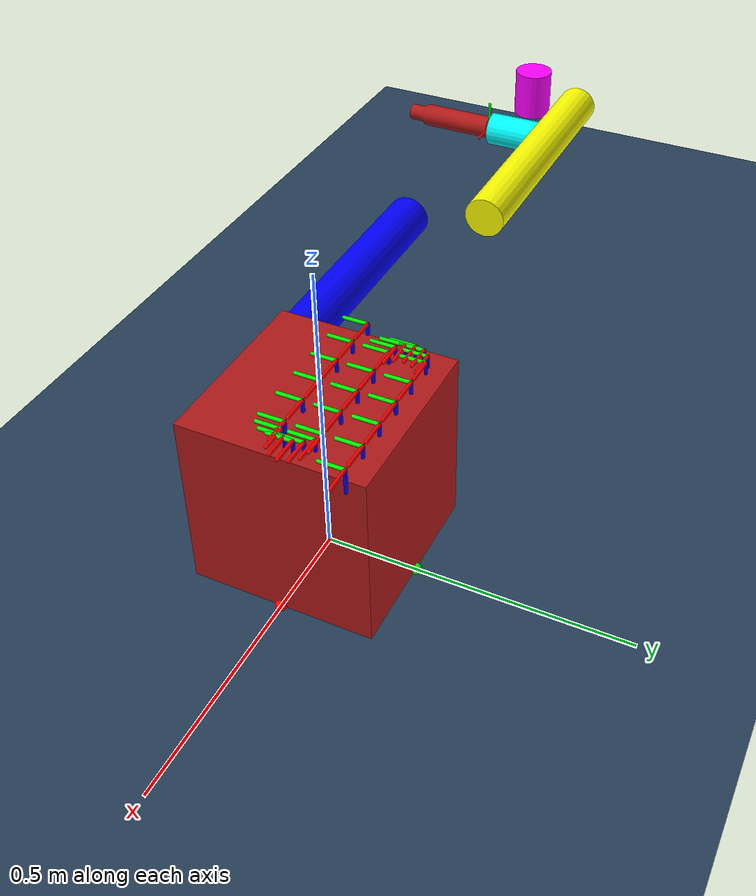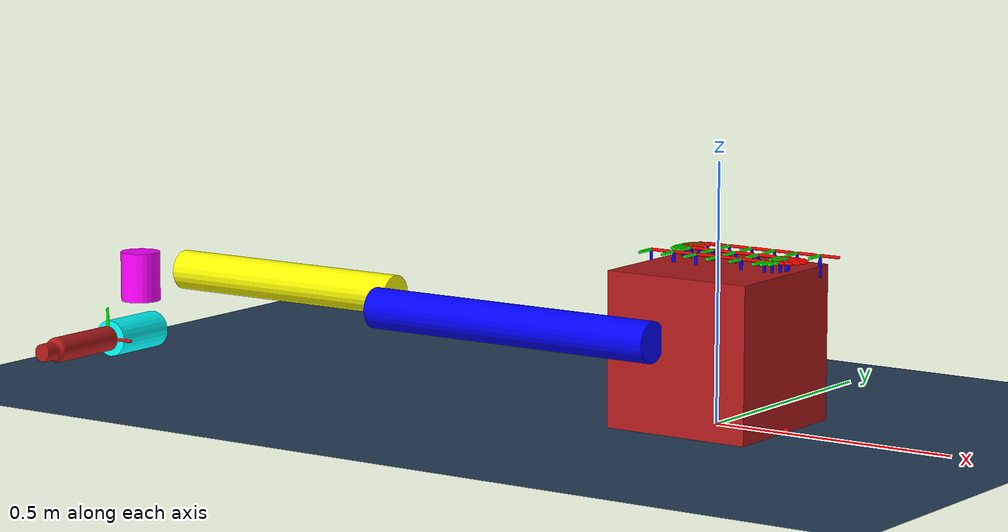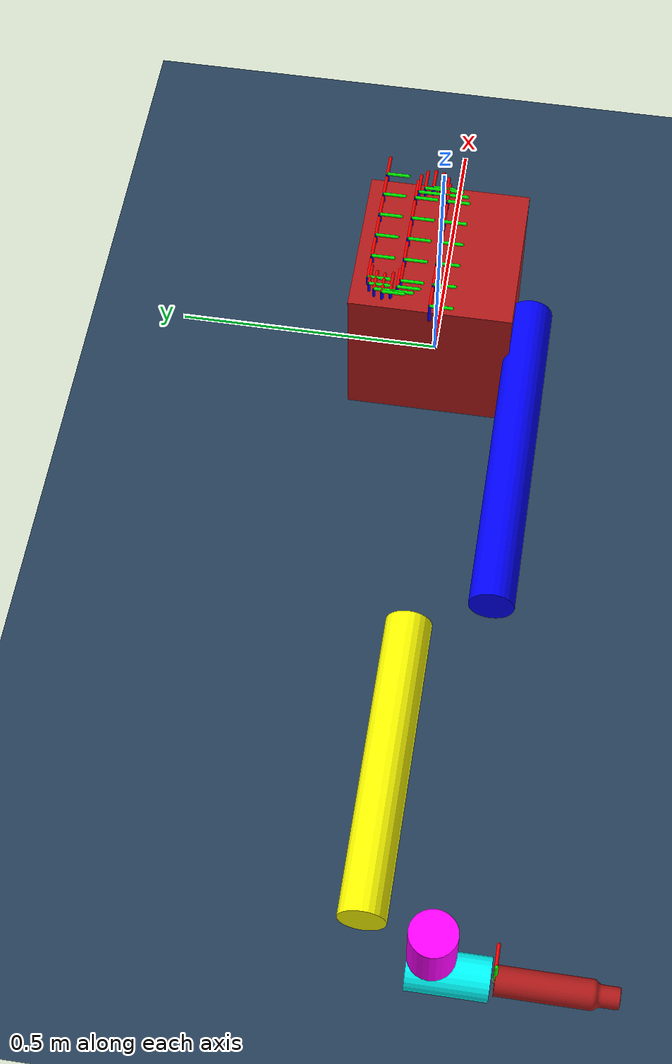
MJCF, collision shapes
<mujoco model="ur5e scene">
  <compiler autolimits="true" balanceinertia="true" meshdir="fairino/assets" angle="radian" coordinate="local"/>
  <statistic center="0.3 0 0.4" extent="0.8"/>

  <visual>
    <headlight diffuse="0.6 0.6 0.6" ambient="0.1 0.1 0.1" specular="0 0 0"/>
    <rgba haze="0.15 0.25 0.35 1"/>
    <global azimuth="120" elevation="-20"/>
  </visual>

  <asset>
    <texture type="skybox" builtin="gradient" rgb1="0.3 0.5 0.7" rgb2="0 0 0" width="512" height="3072"/>
    <texture type="2d" name="groundplane" builtin="checker" mark="edge" rgb1="0.2 0.3 0.4" rgb2="0.1 0.2 0.3" markrgb="0.8 0.8 0.8" width="300" height="300"/>
    <material name="groundplane" texture="groundplane" texuniform="true" texrepeat="5 5" reflectance="0.2"/>
  <material name="Fairino/white" class="Fairino/" rgba="0.89804 0.91765 0.92941 1"/>
    <material name="Fairino/grey" class="Fairino/" rgba="0.79216 0.81961 0.93333 1"/>
    <mesh name="Fairino/base_link" class="Fairino/" file="base_link.STL" scale="1 1 1"/>
    <mesh name="Fairino/shoulder_link" class="Fairino/" file="shoulder_link.STL" scale="1 1 1"/>
    <mesh name="Fairino/upperarm_link" class="Fairino/" file="upperarm_link.STL" scale="1 1 1"/>
    <mesh name="Fairino/forearm_link" class="Fairino/" file="forearm_link.STL" scale="1 1 1"/>
    <mesh name="Fairino/wrist1_link" class="Fairino/" file="wrist1_link.STL" scale="1 1 1"/>
    <mesh name="Fairino/wrist2_link" class="Fairino/" file="wrist2_link.STL" scale="1 1 1"/>
    <mesh name="Fairino/wrist3_link" class="Fairino/" file="wrist3_link.STL" scale="1 1 1"/>
  <mesh name="tool_mesh" file="painting_gun.obj"/>
    <mesh name="painting_gun_collision_mesh" file="painting_gun.obj"/>
  <mesh name="cube_mesh" file="cube.obj"/>
    <mesh name="cube_collision_mesh" file="cube.obj"/>
  </asset>

  <worldbody>
    <light pos="0 0 1.5" dir="0 0 -1" directional="true"/>
    <geom name="floor" size="0 0 0.05" type="plane" pos="0.0 0.0 0.0" material="groundplane"/>
    <!-- Definition of the world frame -->
    <body name="world_frame" pos="0.0 0.0 0.0">
        <geom name="world_x_axis" type="capsule" fromto="0 0 0 0.15 0 0" size="0.01" rgba="1 0 0 1" contype="0" conaffinity="0"/>
        <geom name="world_y_axis" type="capsule" fromto="0 0 0 0 0.15 0" size="0.01" rgba="0 1 0 1" contype="0" conaffinity="0"/>
        <geom name="world_z_axis" type="capsule" fromto="0 0 0 0 0 0.15" size="0.01" rgba="0 0 1 1" contype="0" conaffinity="0"/>
    </body>

    <!-- Optimization search space -->

  <light pos="0 0 1.5" dir="0 0 -1" directional="true"/>
    <body name="Fairino/Robot">

      <body name="base" pos="0 0 0">
        <inertial pos="-0.00037778 -0.00035367 0.035825" euler="0 0 0" mass="0.73775" diaginertia="0.0026263 0.0026258 0.0044466"/>
        <geom type="capsule" fromto="0 0 0 0.05 0 0" rgba="1 0 0 1" size="0.002" contype="0" conaffinity="0"/>
        <geom type="capsule" fromto="0 0 0 0 0.05 0" rgba="0 1 0 1" size="0.002" contype="0" conaffinity="0"/>
        <geom type="capsule" fromto="0 0 0 0 0 0.05" rgba="0 0 1 1" size="0.002" contype="0" conaffinity="0"/>
        <geom name="Fairino/geom_base_visual" class="Fairino/visual" material="Fairino/white" mesh="Fairino/base_link"/>
        <!-- With this -->
        <geom name="Fairino/geom_base_collision" class="Fairino/collision" type="cylinder" pos="0 0 0.13" size="0.06 0.12" rgba="1 0 0 0.4"/>

        <!-- j1: xyz="0 0 0" rpy="0 0 0" axis="0 0 1" -->
        <body name="shoulder_link" pos="0 0 0" euler="0 0 0">
          <inertial pos="3.3888e-09 -0.0079713 0.17311" euler="0 0 0" mass="9.8122" diaginertia="0.041746 0.039088 0.031895"/>
          <joint name="j1" class="Fairino/type_joint" axis="0 0 1" range="-3.0543 3.0543"/>
          <geom name="Fairino/geom_shoulder_visual" class="Fairino/visual" material="Fairino/white" mesh="Fairino/shoulder_link"/>

          <!-- j2: xyz="0 0 0.18" rpy="1.5708 0 0" axis="0 0 1" -->
          <body name="upperarm_link" pos="0 0 0.18" euler="1.5708 0 0">
            <inertial pos="-0.28687 -1.3562e-08 0.18211" euler="0 0 0" mass="29.757" diaginertia="0.0783 2.0297 2.0144"/>
            <joint name="j2" axis="0 0 1" range="-4.6251 1.4835"/>
            <geom name="Fairino/geom_upperarm_visual" class="Fairino/visual" material="Fairino/white" mesh="Fairino/upperarm_link"/>
            <geom name="Fairino/geom_upperarm_collision" class="Fairino/collision" type="cylinder" pos="-0.35 0 0.18" euler="0 1.5708 0" size="0.04 0.32" rgba="0 0 1 0.4"/>

            <!-- j3: xyz="-0.7 0 0" rpy="0 0 0" axis="0 0 1" -->
            <body name="forearm_link" pos="-0.7 0 0" euler="0 0 0">
              <inertial pos="-0.29317 8.0463e-07 0.049055" euler="0 0 0" mass="12.684" diaginertia="0.015471 0.53044 0.52884"/>
              <joint name="j3" axis="0 0 1" range="-2.8274 2.8274"/>
              <geom name="Fairino/geom_forearm_visual" class="Fairino/visual" material="Fairino/white" mesh="Fairino/forearm_link"/>
              <geom name="Fairino/geom_forearm_collision" class="Fairino/collision" type="cylinder" pos="-0.293 0.0 0.045" euler="0 1.5708 0" size="0.04 0.27" rgba="1 1 0 0.4"/>

              <!-- j4: xyz="-0.586 0 0" rpy="0 0 0" axis="0 0 1" -->
              <body name="wrist1_link" pos="-0.586 0 0" euler="0 0 0">
                <inertial pos="5.5958e-07 -0.0024406 0.15369" euler="0 0 0" mass="2.234" diaginertia="0.0034862 0.0026647 0.0032186"/>
                <joint name="j4" axis="0 0 1" range="-4.6251 1.4835"/>
                <geom name="Fairino/geom_wrist1_visual" class="Fairino/visual" material="Fairino/white" mesh="Fairino/wrist1_link"/>
                <geom name="Fairino/geom_wrist1_collision" class="Fairino/collision" type="cylinder" pos="0 0 0.16" euler="1.5708 0 0" size="0.04 0.05" rgba="1 0 1 0.4"/>

                <!-- j5: xyz="0 0 0.159" rpy="1.5708 0 0" axis="0 0 1" -->
                <body name="wrist2_link" pos="0 0 0.159" euler="1.5708 0 0">
                  <inertial pos="-5.5958e-07 0.0024406 0.10869" euler="0 0 0" mass="2.234" diaginertia="0.0034862 0.0026647 0.0032186"/>
                  <joint name="j5" axis="0 0 1" range="-3.0543 3.0543"/>
                  <geom name="Fairino/geom_wrist2_visual" class="Fairino/visual" material="Fairino/white" mesh="Fairino/wrist2_link"/>
                  <geom name="Fairino/geom_wrist2_collision" class="Fairino/collision" type="cylinder" pos="0.0 0.03 0.115" euler="1.5708 0 1.5708" size="0.0365 0.068" rgba="0 1 1 0.4"/>

                  <!-- j6: xyz="0 0 0.114" rpy="-1.5708 0 0" axis="0 0 1" -->
                  <body name="wrist3_link" pos="0 0 0.114" euler="-1.5708 0 0">
                    <inertial pos="-8.7069e-06 -3.2125e-05 0.082427" euler="0 0 0" mass="0.20143" diaginertia="0.00011168 0.0001118 0.00016774"/>
                    <joint name="j6" axis="0 0 1" range="-3.0543 3.0543"/>
                    <geom name="Fairino/geom_wrist3_visual" class="Fairino/visual" material="Fairino/grey" mesh="Fairino/wrist3_link"/>

                    <site name="ee_site" pos="0 0 0.105" quat="1 0 0 0"/>
                    <body name="ee_frame_visual_only" pos="0 0 0.105" quat="1 0 0 0">
                      <geom type="capsule" fromto="0 0 0 0.05 0 0" rgba="1 0 0 1" size="0.002" contype="0" conaffinity="0"/>
                      <geom type="capsule" fromto="0 0 0 0 0.05 0" rgba="0 1 0 1" size="0.002" contype="0" conaffinity="0"/>
                      <geom type="capsule" fromto="0 0 0 0 0 0.05" rgba="0 0 1 1" size="0.002" contype="0" conaffinity="0"/>

                      <body name="tool_frame" pos="0 0 0.0" quat="1 0 0 0">
                        <site name="tool_site" pos="0 0 0" quat="1 0 0 0"/>
                        <geom type="capsule" fromto="0 0 0 0.06 0 0" rgba="1 0 0 1" size="0.003" contype="0" conaffinity="0"/>
                        <geom type="capsule" fromto="0 0 0 0 0.06 0" rgba="0 1 0 1" size="0.003" contype="0" conaffinity="0"/>
                        <geom type="capsule" fromto="0 0 0 0 0 0.06" rgba="0 0 1 1" size="0.003" contype="0" conaffinity="0"/>
                      </body>
                    <body name="tool_base" pos="0 0 0">
      <inertial mass="0.752" pos="0.0 0.0 0.01" diaginertia="0.0143 0.0143 0.0016"/>
      <geom type="mesh" mesh="tool_mesh" rgba="0.6 0.6 0.6 1" contype="0" conaffinity="0" group="0"/>
      <!-- collision mesh -->
      <geom name="painting_gun_collision" type="mesh" mesh="painting_gun_collision_mesh" pos="0 0 0.0" rgba="0.7 0.1 0.1 0.3" contype="1" conaffinity="1" group="3"/>
      <!-- Marker (red sphere) to specify the origin -->
      <site name="mount_site" pos="0 0 0" size="0.005" rgba="1 0 0 1"/>
      <!-- Marker (green sphere) to specify the point of application of the weight -->
    </body>
  </body>

                  </body>
                </body>
              </body>
            </body>
          </body>
        </body>
      </body>
    </body>
  <body name="cube" pos="0 0 0">

      <geom type="mesh" mesh="cube_mesh" rgba="0.45 0.45 0.45 1" contype="0" conaffinity="0" group="0"/>

      <!-- Collisions-->
      <geom name="cube_collision" type="mesh" mesh="cube_collision_mesh" pos="0 0 0" rgba="0.7 0.1 0.1 0.3" contype="1" conaffinity="1" group="3"/>

      <!-- center of the piece -->
      <site name="mount_cube_site" pos="0.0 0.0 0.0" size="0.005" rgba="1 0 0 1"/>

      <!-- Point 1 -->
      <body name="point_1_traj" pos="0.15 0.12 0.32" quat="0 1 0 0">
        <geom type="capsule" fromto="0 0 0 0.04 0 0" rgba="1 0 0 1" size="0.003" contype="0" conaffinity="0"/>
        <geom type="capsule" fromto="0 0 0 0 0.04 0" rgba="0 1 0 1" size="0.003" contype="0" conaffinity="0"/>
        <geom type="capsule" fromto="0 0 0 0 0 0.04" rgba="0 0 1 1" size="0.003" contype="0" conaffinity="0"/>
      </body>

      <!-- Point 2 -->
      <body name="point_2_traj" pos="0.1 0.12 0.32" quat="0 1 0 0">
        <geom type="capsule" fromto="0 0 0 0.04 0 0" rgba="1 0 0 1" size="0.003" contype="0" conaffinity="0"/>
        <geom type="capsule" fromto="0 0 0 0 0.04 0" rgba="0 1 0 1" size="0.003" contype="0" conaffinity="0"/>
        <geom type="capsule" fromto="0 0 0 0 0 0.04" rgba="0 0 1 1" size="0.003" contype="0" conaffinity="0"/>
      </body>

      <!-- Point 3 -->
      <body name="point_3_traj" pos="0.05 0.12 0.32" quat="0 1 0 0">
        <geom type="capsule" fromto="0 0 0 0.04 0 0" rgba="1 0 0 1" size="0.003" contype="0" conaffinity="0"/>
        <geom type="capsule" fromto="0 0 0 0 0.04 0" rgba="0 1 0 1" size="0.003" contype="0" conaffinity="0"/>
        <geom type="capsule" fromto="0 0 0 0 0 0.04" rgba="0 0 1 1" size="0.003" contype="0" conaffinity="0"/>
      </body>

        <!-- Point 4 -->
      <body name="point_4_traj" pos="0.0 0.12 0.32" quat="0 1 0 0">
        <geom type="capsule" fromto="0 0 0 0.04 0 0" rgba="1 0 0 1" size="0.003" contype="0" conaffinity="0"/>
        <geom type="capsule" fromto="0 0 0 0 0.04 0" rgba="0 1 0 1" size="0.003" contype="0" conaffinity="0"/>
        <geom type="capsule" fromto="0 0 0 0 0 0.04" rgba="0 0 1 1" size="0.003" contype="0" conaffinity="0"/>
      </body>

      <!-- Point 5 -->
      <body name="point_5_traj" pos="-0.05 0.12 0.32" quat="0 1 0 0">
        <geom type="capsule" fromto="0 0 0 0.04 0 0" rgba="1 0 0 1" size="0.003" contype="0" conaffinity="0"/>
        <geom type="capsule" fromto="0 0 0 0 0.04 0" rgba="0 1 0 1" size="0.003" contype="0" conaffinity="0"/>
        <geom type="capsule" fromto="0 0 0 0 0 0.04" rgba="0 0 1 1" size="0.003" contype="0" conaffinity="0"/>
      </body>

      <!-- Point 6 -->
      <body name="point_6_traj" pos="-0.1 0.12 0.32" quat="0 1 0 0">
        <geom type="capsule" fromto="0 0 0 0.04 0 0" rgba="1 0 0 1" size="0.003" contype="0" conaffinity="0"/>
        <geom type="capsule" fromto="0 0 0 0 0.04 0" rgba="0 1 0 1" size="0.003" contype="0" conaffinity="0"/>
        <geom type="capsule" fromto="0 0 0 0 0 0.04" rgba="0 0 1 1" size="0.003" contype="0" conaffinity="0"/>
      </body>

      <!-- Point 7 -->
      <body name="point_7_traj" pos="-0.115 0.116 0.32" quat="0 1 0 0">
        <geom type="capsule" fromto="0 0 0 0.04 0 0" rgba="1 0 0 1" size="0.003" contype="0" conaffinity="0"/>
        <geom type="capsule" fromto="0 0 0 0 0.04 0" rgba="0 1 0 1" size="0.003" contype="0" conaffinity="0"/>
        <geom type="capsule" fromto="0 0 0 0 0 0.04" rgba="0 0 1 1" size="0.003" contype="0" conaffinity="0"/>
      </body>

      <!-- Point 8 -->
      <body name="point_8_traj" pos="-0.126 0.105 0.32" quat="0 1 0 0">
        <geom type="capsule" fromto="0 0 0 0.04 0 0" rgba="1 0 0 1" size="0.003" contype="0" conaffinity="0"/>
        <geom type="capsule" fromto="0 0 0 0 0.04 0" rgba="0 1 0 1" size="0.003" contype="0" conaffinity="0"/>
        <geom type="capsule" fromto="0 0 0 0 0 0.04" rgba="0 0 1 1" size="0.003" contype="0" conaffinity="0"/>
      </body>

      <!-- Point 9 -->
      <body name="point_9_traj" pos="-0.130 0.09 0.32" quat="0 1 0 0">
        <geom type="capsule" fromto="0 0 0 0.04 0 0" rgba="1 0 0 1" size="0.003" contype="0" conaffinity="0"/>
        <geom type="capsule" fromto="0 0 0 0 0.04 0" rgba="0 1 0 1" size="0.003" contype="0" conaffinity="0"/>
        <geom type="capsule" fromto="0 0 0 0 0 0.04" rgba="0 0 1 1" size="0.003" contype="0" conaffinity="0"/>
      </body>

      <!-- Point 10 -->
      <body name="point_10_traj" pos="-0.126 0.075 0.32" quat="0 1 0 0">
        <geom type="capsule" fromto="0 0 0 0.04 0 0" rgba="1 0 0 1" size="0.003" contype="0" conaffinity="0"/>
        <geom type="capsule" fromto="0 0 0 0 0.04 0" rgba="0 1 0 1" size="0.003" contype="0" conaffinity="0"/>
        <geom type="capsule" fromto="0 0 0 0 0 0.04" rgba="0 0 1 1" size="0.003" contype="0" conaffinity="0"/>
      </body>

      <!-- Point 11 -->
      <body name="point_11_traj" pos="-0.115 0.064 0.32" quat="0 1 0 0">
        <geom type="capsule" fromto="0 0 0 0.04 0 0" rgba="1 0 0 1" size="0.003" contype="0" conaffinity="0"/>
        <geom type="capsule" fromto="0 0 0 0 0.04 0" rgba="0 1 0 1" size="0.003" contype="0" conaffinity="0"/>
        <geom type="capsule" fromto="0 0 0 0 0 0.04" rgba="0 0 1 1" size="0.003" contype="0" conaffinity="0"/>
      </body>

      <!-- Point 12 -->
      <body name="point_12_traj" pos="-0.1 0.06 0.32" quat="0 1 0 0">
        <geom type="capsule" fromto="0 0 0 0.04 0 0" rgba="1 0 0 1" size="0.003" contype="0" conaffinity="0"/>
        <geom type="capsule" fromto="0 0 0 0 0.04 0" rgba="0 1 0 1" size="0.003" contype="0" conaffinity="0"/>
        <geom type="capsule" fromto="0 0 0 0 0 0.04" rgba="0 0 1 1" size="0.003" contype="0" conaffinity="0"/>
      </body>

      <!-- Point 13 -->
      <body name="point_13_traj" pos="-0.05 0.06 0.32" quat="0 1 0 0">
        <geom type="capsule" fromto="0 0 0 0.04 0 0" rgba="1 0 0 1" size="0.003" contype="0" conaffinity="0"/>
        <geom type="capsule" fromto="0 0 0 0 0.04 0" rgba="0 1 0 1" size="0.003" contype="0" conaffinity="0"/>
        <geom type="capsule" fromto="0 0 0 0 0 0.04" rgba="0 0 1 1" size="0.003" contype="0" conaffinity="0"/>
      </body>

      <!-- Point 14 -->
      <body name="point_14_traj" pos="-0.0 0.06 0.32" quat="0 1 0 0">
        <geom type="capsule" fromto="0 0 0 0.04 0 0" rgba="1 0 0 1" size="0.003" contype="0" conaffinity="0"/>
        <geom type="capsule" fromto="0 0 0 0 0.04 0" rgba="0 1 0 1" size="0.003" contype="0" conaffinity="0"/>
        <geom type="capsule" fromto="0 0 0 0 0 0.04" rgba="0 0 1 1" size="0.003" contype="0" conaffinity="0"/>
      </body>

      <!-- Point 15 -->
      <body name="point_15_traj" pos="0.05 0.06 0.32" quat="0 1 0 0">
        <geom type="capsule" fromto="0 0 0 0.04 0 0" rgba="1 0 0 1" size="0.003" contype="0" conaffinity="0"/>
        <geom type="capsule" fromto="0 0 0 0 0.04 0" rgba="0 1 0 1" size="0.003" contype="0" conaffinity="0"/>
        <geom type="capsule" fromto="0 0 0 0 0 0.04" rgba="0 0 1 1" size="0.003" contype="0" conaffinity="0"/>
      </body>

      <!-- Point 16 -->
      <body name="point_16_traj" pos="0.1 0.06 0.32" quat="0 1 0 0">
        <geom type="capsule" fromto="0 0 0 0.04 0 0" rgba="1 0 0 1" size="0.003" contype="0" conaffinity="0"/>
        <geom type="capsule" fromto="0 0 0 0 0.04 0" rgba="0 1 0 1" size="0.003" contype="0" conaffinity="0"/>
        <geom type="capsule" fromto="0 0 0 0 0 0.04" rgba="0 0 1 1" size="0.003" contype="0" conaffinity="0"/>
      </body>

      <!-- Point 17 -->
      <body name="point_17_traj" pos="0.115 0.056 0.32" quat="0 1 0 0">
        <geom type="capsule" fromto="0 0 0 0.04 0 0" rgba="1 0 0 1" size="0.003" contype="0" conaffinity="0"/>
        <geom type="capsule" fromto="0 0 0 0 0.04 0" rgba="0 1 0 1" size="0.003" contype="0" conaffinity="0"/>
        <geom type="capsule" fromto="0 0 0 0 0 0.04" rgba="0 0 1 1" size="0.003" contype="0" conaffinity="0"/>
      </body>

      <!-- Point 18 -->
      <body name="point_18_traj" pos="0.126 0.045 0.32" quat="0 1 0 0">
        <geom type="capsule" fromto="0 0 0 0.04 0 0" rgba="1 0 0 1" size="0.003" contype="0" conaffinity="0"/>
        <geom type="capsule" fromto="0 0 0 0 0.04 0" rgba="0 1 0 1" size="0.003" contype="0" conaffinity="0"/>
        <geom type="capsule" fromto="0 0 0 0 0 0.04" rgba="0 0 1 1" size="0.003" contype="0" conaffinity="0"/>
      </body>

      <!-- Point 19 -->
      <body name="point_19_traj" pos="0.13 0.03 0.32" quat="0 1 0 0">
        <geom type="capsule" fromto="0 0 0 0.04 0 0" rgba="1 0 0 1" size="0.003" contype="0" conaffinity="0"/>
        <geom type="capsule" fromto="0 0 0 0 0.04 0" rgba="0 1 0 1" size="0.003" contype="0" conaffinity="0"/>
        <geom type="capsule" fromto="0 0 0 0 0 0.04" rgba="0 0 1 1" size="0.003" contype="0" conaffinity="0"/>
      </body>

      <!-- Point 20 -->
      <body name="point_20_traj" pos="0.126 0.015 0.32" quat="0 1 0 0">
        <geom type="capsule" fromto="0 0 0 0.04 0 0" rgba="1 0 0 1" size="0.003" contype="0" conaffinity="0"/>
        <geom type="capsule" fromto="0 0 0 0 0.04 0" rgba="0 1 0 1" size="0.003" contype="0" conaffinity="0"/>
        <geom type="capsule" fromto="0 0 0 0 0 0.04" rgba="0 0 1 1" size="0.003" contype="0" conaffinity="0"/>
      </body>

      <!-- Point 21 -->
      <body name="point_21_traj" pos="0.115 0.004 0.32" quat="0 1 0 0">
        <geom type="capsule" fromto="0 0 0 0.04 0 0" rgba="1 0 0 1" size="0.003" contype="0" conaffinity="0"/>
        <geom type="capsule" fromto="0 0 0 0 0.04 0" rgba="0 1 0 1" size="0.003" contype="0" conaffinity="0"/>
        <geom type="capsule" fromto="0 0 0 0 0 0.04" rgba="0 0 1 1" size="0.003" contype="0" conaffinity="0"/>
      </body>

      <!-- Point 22 -->
      <body name="point_22_traj" pos="0.1 0.0 0.32" quat="0 1 0 0">
        <geom type="capsule" fromto="0 0 0 0.04 0 0" rgba="1 0 0 1" size="0.003" contype="0" conaffinity="0"/>
        <geom type="capsule" fromto="0 0 0 0 0.04 0" rgba="0 1 0 1" size="0.003" contype="0" conaffinity="0"/>
        <geom type="capsule" fromto="0 0 0 0 0 0.04" rgba="0 0 1 1" size="0.003" contype="0" conaffinity="0"/>
      </body>

      <!-- Point 23 -->
      <body name="point_23_traj" pos="0.05 0.0 0.32" quat="0 1 0 0">
        <geom type="capsule" fromto="0 0 0 0.04 0 0" rgba="1 0 0 1" size="0.003" contype="0" conaffinity="0"/>
        <geom type="capsule" fromto="0 0 0 0 0.04 0" rgba="0 1 0 1" size="0.003" contype="0" conaffinity="0"/>
        <geom type="capsule" fromto="0 0 0 0 0 0.04" rgba="0 0 1 1" size="0.003" contype="0" conaffinity="0"/>
      </body>

      <!-- Point 24 -->
      <body name="point_24_traj" pos="0.0 0.0 0.32" quat="0 1 0 0">
        <geom type="capsule" fromto="0 0 0 0.04 0 0" rgba="1 0 0 1" size="0.003" contype="0" conaffinity="0"/>
        <geom type="capsule" fromto="0 0 0 0 0.04 0" rgba="0 1 0 1" size="0.003" contype="0" conaffinity="0"/>
        <geom type="capsule" fromto="0 0 0 0 0 0.04" rgba="0 0 1 1" size="0.003" contype="0" conaffinity="0"/>
      </body>

      <!-- Point 25 -->
      <body name="point_25_traj" pos="-0.05 0.0 0.32" quat="0 1 0 0">
        <geom type="capsule" fromto="0 0 0 0.04 0 0" rgba="1 0 0 1" size="0.003" contype="0" conaffinity="0"/>
        <geom type="capsule" fromto="0 0 0 0 0.04 0" rgba="0 1 0 1" size="0.003" contype="0" conaffinity="0"/>
        <geom type="capsule" fromto="0 0 0 0 0 0.04" rgba="0 0 1 1" size="0.003" contype="0" conaffinity="0"/>
      </body>

      <!-- Point 26 -->
      <body name="point_26_traj" pos="-0.1 0.0 0.32" quat="0 1 0 0">
        <geom type="capsule" fromto="0 0 0 0.04 0 0" rgba="1 0 0 1" size="0.003" contype="0" conaffinity="0"/>
        <geom type="capsule" fromto="0 0 0 0 0.04 0" rgba="0 1 0 1" size="0.003" contype="0" conaffinity="0"/>
        <geom type="capsule" fromto="0 0 0 0 0 0.04" rgba="0 0 1 1" size="0.003" contype="0" conaffinity="0"/>
      </body>

      <!-- Point 27 -->
      <body name="point_27_traj" pos="-0.15 0.0 0.32" quat="0 1 0 0">
        <geom type="capsule" fromto="0 0 0 0.04 0 0" rgba="1 0 0 1" size="0.003" contype="0" conaffinity="0"/>
        <geom type="capsule" fromto="0 0 0 0 0.04 0" rgba="0 1 0 1" size="0.003" contype="0" conaffinity="0"/>
        <geom type="capsule" fromto="0 0 0 0 0 0.04" rgba="0 0 1 1" size="0.003" contype="0" conaffinity="0"/>
      </body>

    </body>
  </worldbody>

<default><default class="Fairino/">
      <material specular="0.5" shininess="0.25"/>
      <default class="Fairino/type_joint">
        <joint range="-3.0543 3.0543"/>
        <general ctrlrange="-3.0543 3.0543"/>
      </default>
      <default class="Fairino/visual">
        <geom type="mesh" group="2" contype="0" conaffinity="0"/>
      </default>
      <default class="Fairino/collision">
        <geom type="mesh" group="3" contype="1" conaffinity="1"/>
      </default>
    </default>
  <geom condim="3" friction="1 0.5 0.01" solref="0.02 1" solimp="0.9 0.95 0.001"/>
  </default><actuator><motor joint="j1" gear="1"/>
    <motor joint="j2" gear="1"/>
    <motor joint="j3" gear="1"/>
    <motor joint="j4" gear="1"/>
    <motor joint="j5" gear="1"/>
    <motor joint="j6" gear="1"/>
  </actuator></mujoco>
